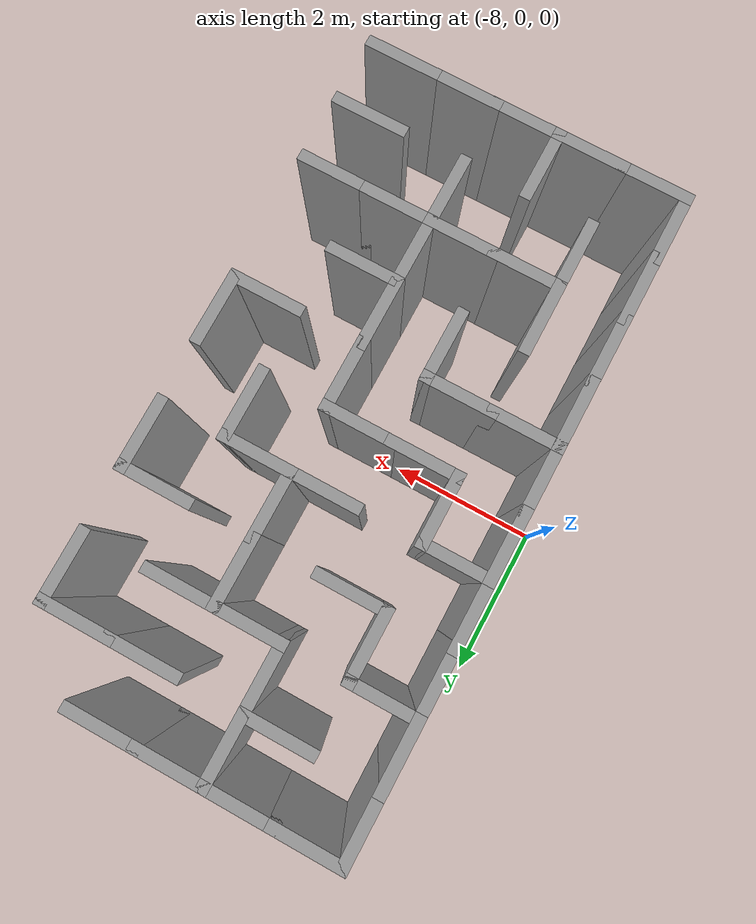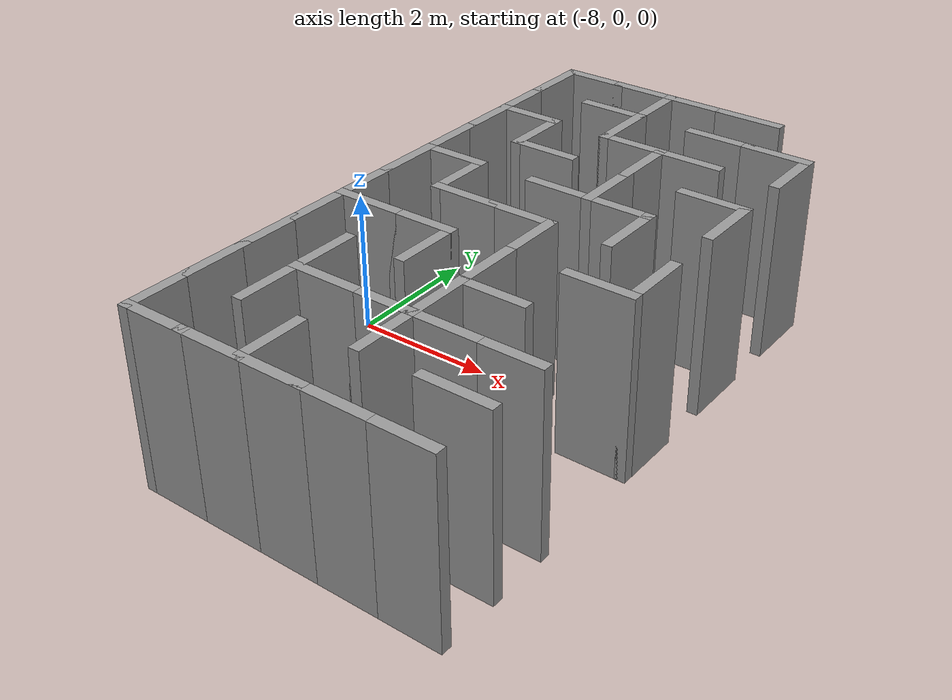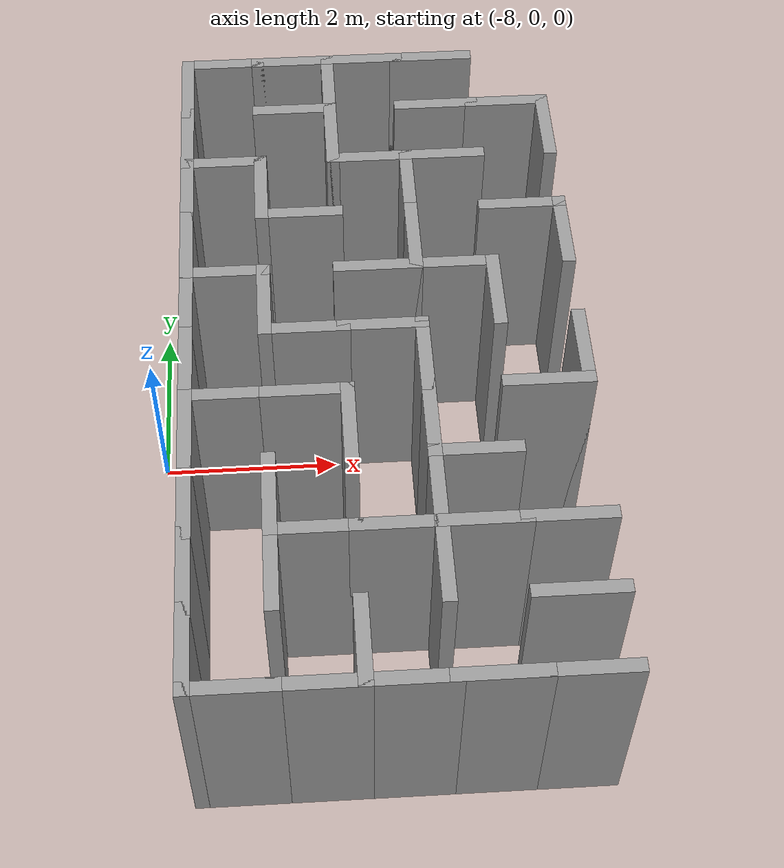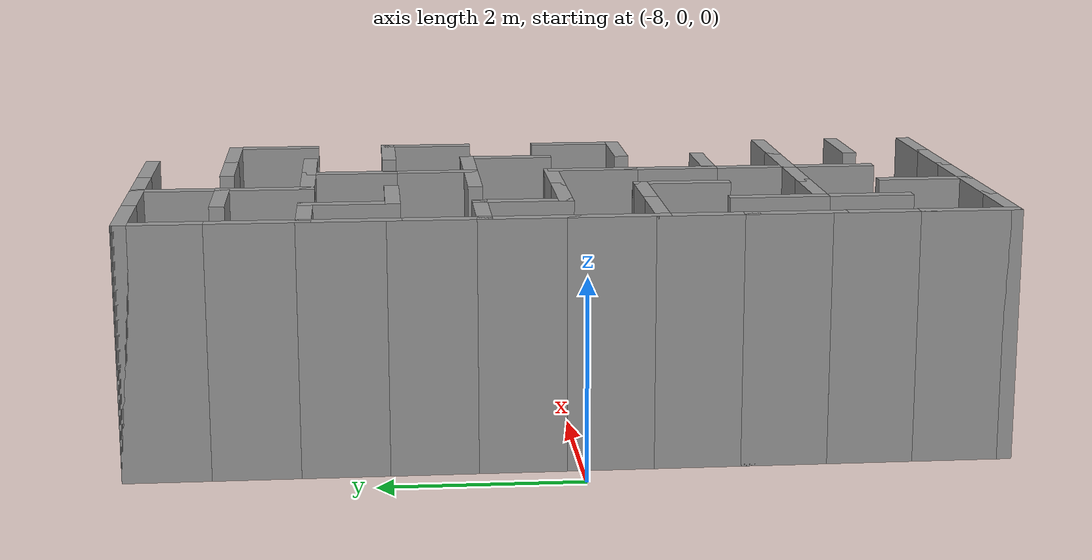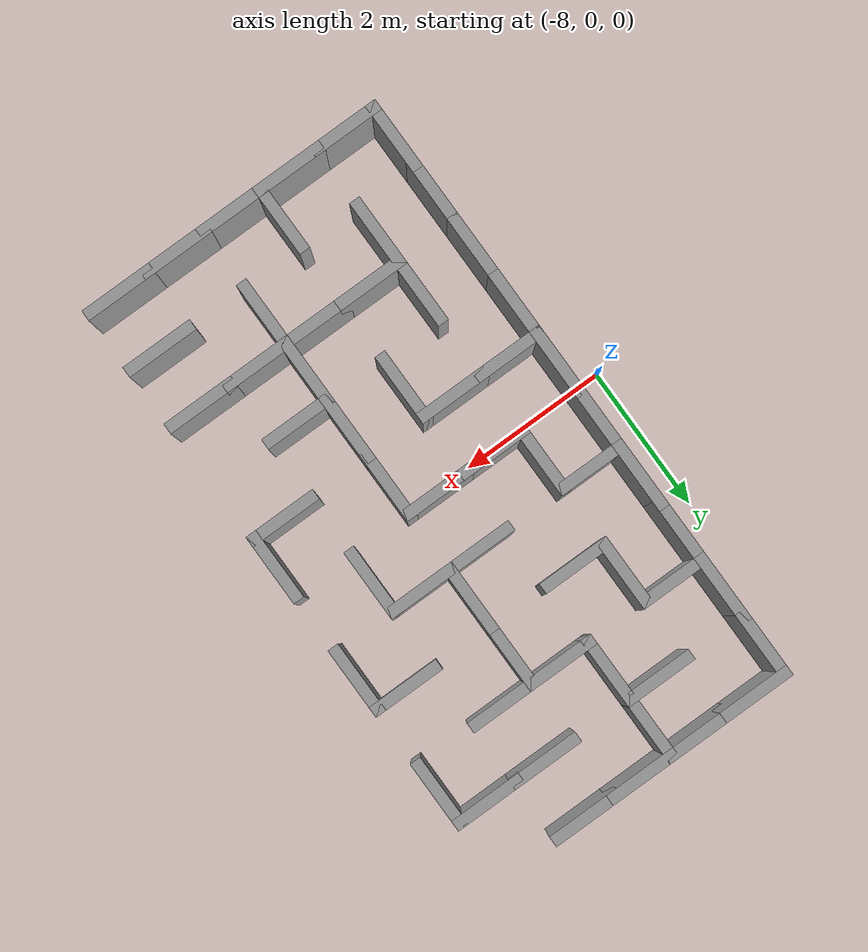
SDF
<sdf version="1.6">
 <model name="maze_2">
  <pose>-3.32543 0.082709 0 0 -0 0</pose>
  <link name="Wall_0">
   <collision name="Wall_0_Collision">
    <geometry><box><size>1 0.15 2.5</size></box></geometry>
    <pose>0 0 1.25 0 -0 0</pose>
   </collision>
   <visual name="Wall_0_Visual">
    <pose>0 0 1.25 0 -0 0</pose>
    <geometry><box><size>1 0.15 2.5</size></box></geometry>
    <material>
     <script><uri>file://media/materials/scripts/gazebo.material</uri><name>Gazebo/Grey</name></script>
     <ambient>1 1 1 1</ambient>
    </material>
    <meta><layer>0</layer></meta>
   </visual>
   <pose>-3.825 4.25 0 0 -0 0</pose>
  </link>
  <link name="Wall_1">
   <collision name="Wall_1_Collision">
    <geometry><box><size>1 0.15 2.5</size></box></geometry>
    <pose>0 0 1.25 0 -0 0</pose>
   </collision>
   <visual name="Wall_1_Visual">
    <pose>0 0 1.25 0 -0 0</pose>
    <geometry><box><size>1 0.15 2.5</size></box></geometry>
    <material>
     <script><uri>file://media/materials/scripts/gazebo.material</uri><name>Gazebo/Grey</name></script>
     <ambient>1 1 1 1</ambient>
    </material>
    <meta><layer>0</layer></meta>
   </visual>
   <pose>-2.975 4.25 0 0 -0 0</pose>
  </link>
  <link name="Wall_100">
   <collision name="Wall_100_Collision">
    <geometry><box><size>1 0.15 2.5</size></box></geometry>
    <pose>0 0 1.25 0 -0 0</pose>
   </collision>
   <visual name="Wall_100_Visual">
    <pose>0 0 1.25 0 -0 0</pose>
    <geometry><box><size>1 0.15 2.5</size></box></geometry>
    <material>
     <script><uri>file://media/materials/scripts/gazebo.material</uri><name>Gazebo/Grey</name></script>
     <ambient>1 1 1 1</ambient>
    </material>
    <meta><layer>0</layer></meta>
   </visual>
   <pose>-3.825 -0.85 0 0 -0 0</pose>
  </link>
  <link name="Wall_101">
   <collision name="Wall_101_Collision">
    <geometry><box><size>1 0.15 2.5</size></box></geometry>
    <pose>0 0 1.25 0 -0 0</pose>
   </collision>
   <visual name="Wall_101_Visual">
    <pose>0 0 1.25 0 -0 0</pose>
    <geometry><box><size>1 0.15 2.5</size></box></geometry>
    <material>
     <script><uri>file://media/materials/scripts/gazebo.material</uri><name>Gazebo/Grey</name></script>
     <ambient>1 1 1 1</ambient>
    </material>
    <meta><layer>0</layer></meta>
   </visual>
   <pose>-2.975 -0.85 0 0 -0 0</pose>
  </link>
  <link name="Wall_104">
   <collision name="Wall_104_Collision">
    <geometry><box><size>1 0.15 2.5</size></box></geometry>
    <pose>0 0 1.25 0 -0 0</pose>
   </collision>
   <visual name="Wall_104_Visual">
    <pose>0 0 1.25 0 -0 0</pose>
    <geometry><box><size>1 0.15 2.5</size></box></geometry>
    <material>
     <script><uri>file://media/materials/scripts/gazebo.material</uri><name>Gazebo/Grey</name></script>
     <ambient>1 1 1 1</ambient>
    </material>
    <meta><layer>0</layer></meta>
   </visual>
   <pose>-0.425 -0.85 0 0 -0 0</pose>
  </link>
  <link name="Wall_117">
   <collision name="Wall_117_Collision">
    <geometry><box><size>1 0.15 2.5</size></box></geometry>
    <pose>0 0 1.25 0 -0 0</pose>
   </collision>
   <visual name="Wall_117_Visual">
    <pose>0 0 1.25 0 -0 0</pose>
    <geometry><box><size>1 0.15 2.5</size></box></geometry>
    <material>
     <script><uri>file://media/materials/scripts/gazebo.material</uri><name>Gazebo/Grey</name></script>
     <ambient>1 1 1 1</ambient>
    </material>
    <meta><layer>0</layer></meta>
   </visual>
   <pose>-1.275 -1.7 0 0 -0 3.14159</pose>
  </link>
  <link name="Wall_124">
   <collision name="Wall_124_Collision">
    <geometry><box><size>1 0.15 2.5</size></box></geometry>
    <pose>0 0 1.25 0 -0 0</pose>
   </collision>
   <visual name="Wall_124_Visual">
    <pose>0 0 1.25 0 -0 0</pose>
    <geometry><box><size>1 0.15 2.5</size></box></geometry>
    <material>
     <script><uri>file://media/materials/scripts/gazebo.material</uri><name>Gazebo/Grey</name></script>
     <ambient>1 1 1 1</ambient>
    </material>
    <meta><layer>0</layer></meta>
   </visual>
   <pose>-2.975 -2.55 0 0 -0 0</pose>
  </link>
  <link name="Wall_125">
   <collision name="Wall_125_Collision">
    <geometry><box><size>1 0.15 2.5</size></box></geometry>
    <pose>0 0 1.25 0 -0 0</pose>
   </collision>
   <visual name="Wall_125_Visual">
    <pose>0 0 1.25 0 -0 0</pose>
    <geometry><box><size>1 0.15 2.5</size></box></geometry>
    <material>
     <script><uri>file://media/materials/scripts/gazebo.material</uri><name>Gazebo/Grey</name></script>
     <ambient>1 1 1 1</ambient>
    </material>
    <meta><layer>0</layer></meta>
   </visual>
   <pose>-2.125 -2.55 0 0 -0 0</pose>
  </link>
  <link name="Wall_126">
   <collision name="Wall_126_Collision">
    <geometry><box><size>1 0.15 2.5</size></box></geometry>
    <pose>0 0 1.25 0 -0 0</pose>
   </collision>
   <visual name="Wall_126_Visual">
    <pose>0 0 1.25 0 -0 0</pose>
    <geometry><box><size>1 0.15 2.5</size></box></geometry>
    <material>
     <script><uri>file://media/materials/scripts/gazebo.material</uri><name>Gazebo/Grey</name></script>
     <ambient>1 1 1 1</ambient>
    </material>
    <meta><layer>0</layer></meta>
   </visual>
   <pose>-1.275 -2.55 0 0 -0 0</pose>
  </link>
  <link name="Wall_127">
   <collision name="Wall_127_Collision">
    <geometry><box><size>1 0.15 2.5</size></box></geometry>
    <pose>0 0 1.25 0 -0 0</pose>
   </collision>
   <visual name="Wall_127_Visual">
    <pose>0 0 1.25 0 -0 0</pose>
    <geometry><box><size>1 0.15 2.5</size></box></geometry>
    <material>
     <script><uri>file://media/materials/scripts/gazebo.material</uri><name>Gazebo/Grey</name></script>
     <ambient>1 1 1 1</ambient>
    </material>
    <meta><layer>0</layer></meta>
   </visual>
   <pose>-0.425 -2.55 0 0 -0 0</pose>
  </link>
  <link name="Wall_138">
   <collision name="Wall_138_Collision">
    <geometry><box><size>1 0.15 2.5</size></box></geometry>
    <pose>0 0 1.25 0 -0 0</pose>
   </collision>
   <visual name="Wall_138_Visual">
    <pose>0 0 1.25 0 -0 0</pose>
    <geometry><box><size>1 0.15 2.5</size></box></geometry>
    <material>
     <script><uri>file://media/materials/scripts/gazebo.material</uri><name>Gazebo/Grey</name></script>
     <ambient>1 1 1 1</ambient>
    </material>
    <meta><layer>0</layer></meta>
   </visual>
   <pose>-0.425 -3.4 0 0 -0 0</pose>
  </link>
  <link name="Wall_147">
   <collision name="Wall_147_Collision">
    <geometry><box><size>1 0.15 2.5</size></box></geometry>
    <pose>0 0 1.25 0 -0 0</pose>
   </collision>
   <visual name="Wall_147_Visual">
    <pose>0 0 1.25 0 -0 0</pose>
    <geometry><box><size>1 0.15 2.5</size></box></geometry>
    <material>
     <script><uri>file://media/materials/scripts/gazebo.material</uri><name>Gazebo/Grey</name></script>
     <ambient>1 1 1 1</ambient>
    </material>
    <meta><layer>0</layer></meta>
   </visual>
   <pose>-3.4 2.125 0 0 -0 -1.5708</pose>
  </link>
  <link name="Wall_149">
   <collision name="Wall_149_Collision">
    <geometry><box><size>1 0.15 2.5</size></box></geometry>
    <pose>0 0 1.25 0 -0 0</pose>
   </collision>
   <visual name="Wall_149_Visual">
    <pose>0 0 1.25 0 -0 0</pose>
    <geometry><box><size>1 0.15 2.5</size></box></geometry>
    <material>
     <script><uri>file://media/materials/scripts/gazebo.material</uri><name>Gazebo/Grey</name></script>
     <ambient>1 1 1 1</ambient>
    </material>
    <meta><layer>0</layer></meta>
   </visual>
   <pose>-3.4 0.425 0 0 -0 -1.5708</pose>
  </link>
  <link name="Wall_152">
   <collision name="Wall_152_Collision">
    <geometry><box><size>1 0.15 2.5</size></box></geometry>
    <pose>0 0 1.25 0 -0 0</pose>
   </collision>
   <visual name="Wall_152_Visual">
    <pose>0 0 1.25 0 -0 0</pose>
    <geometry><box><size>1 0.15 2.5</size></box></geometry>
    <material>
     <script><uri>file://media/materials/scripts/gazebo.material</uri><name>Gazebo/Grey</name></script>
     <ambient>1 1 1 1</ambient>
    </material>
    <meta><layer>0</layer></meta>
   </visual>
   <pose>-3.4 -2.125 0 0 -0 -1.5708</pose>
  </link>
  <link name="Wall_153">
   <collision name="Wall_153_Collision">
    <geometry><box><size>1 0.15 2.5</size></box></geometry>
    <pose>0 0 1.25 0 -0 0</pose>
   </collision>
   <visual name="Wall_153_Visual">
    <pose>0 0 1.25 0 -0 0</pose>
    <geometry><box><size>1 0.15 2.5</size></box></geometry>
    <material>
     <script><uri>file://media/materials/scripts/gazebo.material</uri><name>Gazebo/Grey</name></script>
     <ambient>1 1 1 1</ambient>
    </material>
    <meta><layer>0</layer></meta>
   </visual>
   <pose>-3.4 -2.975 0 0 -0 -1.5708</pose>
  </link>
  <link name="Wall_156">
   <collision name="Wall_156_Collision">
    <geometry><box><size>1 0.15 2.5</size></box></geometry>
    <pose>0 0 1.25 0 -0 0</pose>
   </collision>
   <visual name="Wall_156_Visual">
    <pose>0 0 1.25 0 -0 0</pose>
    <geometry><box><size>1 0.15 2.5</size></box></geometry>
    <material>
     <script><uri>file://media/materials/scripts/gazebo.material</uri><name>Gazebo/Grey</name></script>
     <ambient>1 1 1 1</ambient>
    </material>
    <meta><layer>0</layer></meta>
   </visual>
   <pose>-2.55 3.825 0 0 -0 -1.5708</pose>
  </link>
  <link name="Wall_157">
   <collision name="Wall_157_Collision">
    <geometry><box><size>1 0.15 2.5</size></box></geometry>
    <pose>0 0 1.25 0 -0 0</pose>
   </collision>
   <visual name="Wall_157_Visual">
    <pose>0 0 1.25 0 -0 0</pose>
    <geometry><box><size>1 0.15 2.5</size></box></geometry>
    <material>
     <script><uri>file://media/materials/scripts/gazebo.material</uri><name>Gazebo/Grey</name></script>
     <ambient>1 1 1 1</ambient>
    </material>
    <meta><layer>0</layer></meta>
   </visual>
   <pose>-2.55 2.975 0 0 -0 -1.5708</pose>
  </link>
  <link name="Wall_162">
   <collision name="Wall_162_Collision">
    <geometry><box><size>1 0.15 2.5</size></box></geometry>
    <pose>0 0 1.25 0 -0 0</pose>
   </collision>
   <visual name="Wall_162_Visual">
    <pose>0 0 1.25 0 -0 0</pose>
    <geometry><box><size>1 0.15 2.5</size></box></geometry>
    <material>
     <script><uri>file://media/materials/scripts/gazebo.material</uri><name>Gazebo/Grey</name></script>
     <ambient>1 1 1 1</ambient>
    </material>
    <meta><layer>0</layer></meta>
   </visual>
   <pose>-2.55 -1.275 0 0 -0 -1.5708</pose>
  </link>
  <link name="Wall_165">
   <collision name="Wall_165_Collision">
    <geometry><box><size>1 0.15 2.5</size></box></geometry>
    <pose>0 0 1.25 0 -0 0</pose>
   </collision>
   <visual name="Wall_165_Visual">
    <pose>0 0 1.25 0 -0 0</pose>
    <geometry><box><size>1 0.15 2.5</size></box></geometry>
    <material>
     <script><uri>file://media/materials/scripts/gazebo.material</uri><name>Gazebo/Grey</name></script>
     <ambient>1 1 1 1</ambient>
    </material>
    <meta><layer>0</layer></meta>
   </visual>
   <pose>-2.55 -3.825 0 0 -0 -1.5708</pose>
  </link>
  <link name="Wall_169">
   <collision name="Wall_169_Collision">
    <geometry><box><size>1 0.15 2.5</size></box></geometry>
    <pose>0 0 1.25 0 -0 0</pose>
   </collision>
   <visual name="Wall_169_Visual">
    <pose>0 0 1.25 0 -0 0</pose>
    <geometry><box><size>1 0.15 2.5</size></box></geometry>
    <material>
     <script><uri>file://media/materials/scripts/gazebo.material</uri><name>Gazebo/Grey</name></script>
     <ambient>1 1 1 1</ambient>
    </material>
    <meta><layer>0</layer></meta>
   </visual>
   <pose>-1.7 2.125 0 0 -0 -1.5708</pose>
  </link>
  <link name="Wall_170">
   <collision name="Wall_170_Collision">
    <geometry><box><size>1 0.15 2.5</size></box></geometry>
    <pose>0 0 1.25 0 -0 0</pose>
   </collision>
   <visual name="Wall_170_Visual">
    <pose>0 0 1.25 0 -0 0</pose>
    <geometry><box><size>1 0.15 2.5</size></box></geometry>
    <material>
     <script><uri>file://media/materials/scripts/gazebo.material</uri><name>Gazebo/Grey</name></script>
     <ambient>1 1 1 1</ambient>
    </material>
    <meta><layer>0</layer></meta>
   </visual>
   <pose>-1.7 1.275 0 0 -0 -1.5708</pose>
  </link>
  <link name="Wall_172">
   <collision name="Wall_172_Collision">
    <geometry><box><size>1 0.15 2.5</size></box></geometry>
    <pose>0 0 1.25 0 -0 0</pose>
   </collision>
   <visual name="Wall_172_Visual">
    <pose>0 0 1.25 0 -0 0</pose>
    <geometry><box><size>1 0.15 2.5</size></box></geometry>
    <material>
     <script><uri>file://media/materials/scripts/gazebo.material</uri><name>Gazebo/Grey</name></script>
     <ambient>1 1 1 1</ambient>
    </material>
    <meta><layer>0</layer></meta>
   </visual>
   <pose>-1.7 -0.425 0 0 -0 -1.5708</pose>
  </link>
  <link name="Wall_173">
   <collision name="Wall_173_Collision">
    <geometry><box><size>1 0.15 2.5</size></box></geometry>
    <pose>0 0 1.25 0 -0 0</pose>
   </collision>
   <visual name="Wall_173_Visual">
    <pose>0 0 1.25 0 -0 0</pose>
    <geometry><box><size>1 0.15 2.5</size></box></geometry>
    <material>
     <script><uri>file://media/materials/scripts/gazebo.material</uri><name>Gazebo/Grey</name></script>
     <ambient>1 1 1 1</ambient>
    </material>
    <meta><layer>0</layer></meta>
   </visual>
   <pose>-1.7 -1.275 0 0 -0 -1.5708</pose>
  </link>
  <link name="Wall_174">
   <collision name="Wall_174_Collision">
    <geometry><box><size>1 0.15 2.5</size></box></geometry>
    <pose>0 0 1.25 0 -0 0</pose>
   </collision>
   <visual name="Wall_174_Visual">
    <pose>0 0 1.25 0 -0 0</pose>
    <geometry><box><size>1 0.15 2.5</size></box></geometry>
    <material>
     <script><uri>file://media/materials/scripts/gazebo.material</uri><name>Gazebo/Grey</name></script>
     <ambient>1 1 1 1</ambient>
    </material>
    <meta><layer>0</layer></meta>
   </visual>
   <pose>-1.7 -2.125 0 0 -0 -1.5708</pose>
  </link>
  <link name="Wall_175">
   <collision name="Wall_175_Collision">
    <geometry><box><size>1 0.15 2.5</size></box></geometry>
    <pose>0 0 1.25 0 -0 0</pose>
   </collision>
   <visual name="Wall_175_Visual">
    <pose>0 0 1.25 0 -0 0</pose>
    <geometry><box><size>1 0.15 2.5</size></box></geometry>
    <material>
     <script><uri>file://media/materials/scripts/gazebo.material</uri><name>Gazebo/Grey</name></script>
     <ambient>1 1 1 1</ambient>
    </material>
    <meta><layer>0</layer></meta>
   </visual>
   <pose>-1.7 -2.975 0 0 -0 -1.5708</pose>
  </link>
  <link name="Wall_182">
   <collision name="Wall_182_Collision">
    <geometry><box><size>1 0.15 2.5</size></box></geometry>
    <pose>0 0 1.25 0 -0 0</pose>
   </collision>
   <visual name="Wall_182_Visual">
    <pose>0 0 1.25 0 -0 0</pose>
    <geometry><box><size>1 0.15 2.5</size></box></geometry>
    <material>
     <script><uri>file://media/materials/scripts/gazebo.material</uri><name>Gazebo/Grey</name></script>
     <ambient>1 1 1 1</ambient>
    </material>
    <meta><layer>0</layer></meta>
   </visual>
   <pose>-0.85 0.425 0 0 -0 -1.5708</pose>
  </link>
  <link name="Wall_190">
   <collision name="Wall_190_Collision">
    <geometry><box><size>1 0.15 2.5</size></box></geometry>
    <pose>0 0 1.25 0 -0 0</pose>
   </collision>
   <visual name="Wall_190_Visual">
    <pose>0 0 1.25 0 -0 0</pose>
    <geometry><box><size>1 0.15 2.5</size></box></geometry>
    <material>
     <script><uri>file://media/materials/scripts/gazebo.material</uri><name>Gazebo/Grey</name></script>
     <ambient>1 1 1 1</ambient>
    </material>
    <meta><layer>0</layer></meta>
   </visual>
   <pose>0 2.975 0 0 -0 -1.5708</pose>
  </link>
  <link name="Wall_192">
   <collision name="Wall_192_Collision">
    <geometry><box><size>1 0.15 2.5</size></box></geometry>
    <pose>0 0 1.25 0 -0 0</pose>
   </collision>
   <visual name="Wall_192_Visual">
    <pose>0 0 1.25 0 -0 0</pose>
    <geometry><box><size>1 0.15 2.5</size></box></geometry>
    <material>
     <script><uri>file://media/materials/scripts/gazebo.material</uri><name>Gazebo/Grey</name></script>
     <ambient>1 1 1 1</ambient>
    </material>
    <meta><layer>0</layer></meta>
   </visual>
   <pose>0 1.275 0 0 -0 -1.5708</pose>
  </link>
  <link name="Wall_194">
   <collision name="Wall_194_Collision">
    <geometry><box><size>1 0.15 2.5</size></box></geometry>
    <pose>0 0 1.25 0 -0 0</pose>
   </collision>
   <visual name="Wall_194_Visual">
    <pose>0 0 1.25 0 -0 0</pose>
    <geometry><box><size>1 0.15 2.5</size></box></geometry>
    <material>
     <script><uri>file://media/materials/scripts/gazebo.material</uri><name>Gazebo/Grey</name></script>
     <ambient>1 1 1 1</ambient>
    </material>
    <meta><layer>0</layer></meta>
   </visual>
   <pose>0 -0.425 0 0 -0 -1.5708</pose>
  </link>
  <link name="Wall_2">
   <collision name="Wall_2_Collision">
    <geometry><box><size>1 0.15 2.5</size></box></geometry>
    <pose>0 0 1.25 0 -0 0</pose>
   </collision>
   <visual name="Wall_2_Visual">
    <pose>0 0 1.25 0 -0 0</pose>
    <geometry><box><size>1 0.15 2.5</size></box></geometry>
    <material>
     <script><uri>file://media/materials/scripts/gazebo.material</uri><name>Gazebo/Grey</name></script>
     <ambient>1 1 1 1</ambient>
    </material>
    <meta><layer>0</layer></meta>
   </visual>
   <pose>-2.125 4.25 0 0 -0 0</pose>
  </link>
  <link name="Wall_27">
   <collision name="Wall_27_Collision">
    <geometry><box><size>1 0.15 2.5</size></box></geometry>
    <pose>0 0 1.25 0 -0 0</pose>
   </collision>
   <visual name="Wall_27_Visual">
    <pose>0 0 1.25 0 -0 0</pose>
    <geometry><box><size>1 0.15 2.5</size></box></geometry>
    <material>
     <script><uri>file://media/materials/scripts/gazebo.material</uri><name>Gazebo/Grey</name></script>
     <ambient>1 1 1 1</ambient>
    </material>
    <meta><layer>0</layer></meta>
   </visual>
   <pose>-0.425 -4.25 0 0 -0 3.14159</pose>
  </link>
  <link name="Wall_28">
   <collision name="Wall_28_Collision">
    <geometry><box><size>1 0.15 2.5</size></box></geometry>
    <pose>0 0 1.25 0 -0 0</pose>
   </collision>
   <visual name="Wall_28_Visual">
    <pose>0 0 1.25 0 -0 0</pose>
    <geometry><box><size>1 0.15 2.5</size></box></geometry>
    <material>
     <script><uri>file://media/materials/scripts/gazebo.material</uri><name>Gazebo/Grey</name></script>
     <ambient>1 1 1 1</ambient>
    </material>
    <meta><layer>0</layer></meta>
   </visual>
   <pose>-1.275 -4.25 0 0 -0 3.14159</pose>
  </link>
  <link name="Wall_29">
   <collision name="Wall_29_Collision">
    <geometry><box><size>1 0.15 2.5</size></box></geometry>
    <pose>0 0 1.25 0 -0 0</pose>
   </collision>
   <visual name="Wall_29_Visual">
    <pose>0 0 1.25 0 -0 0</pose>
    <geometry><box><size>1 0.15 2.5</size></box></geometry>
    <material>
     <script><uri>file://media/materials/scripts/gazebo.material</uri><name>Gazebo/Grey</name></script>
     <ambient>1 1 1 1</ambient>
    </material>
    <meta><layer>0</layer></meta>
   </visual>
   <pose>-2.125 -4.25 0 0 -0 3.14159</pose>
  </link>
  <link name="Wall_3">
   <collision name="Wall_3_Collision">
    <geometry><box><size>1 0.15 2.5</size></box></geometry>
    <pose>0 0 1.25 0 -0 0</pose>
   </collision>
   <visual name="Wall_3_Visual">
    <pose>0 0 1.25 0 -0 0</pose>
    <geometry><box><size>1 0.15 2.5</size></box></geometry>
    <material>
     <script><uri>file://media/materials/scripts/gazebo.material</uri><name>Gazebo/Grey</name></script>
     <ambient>1 1 1 1</ambient>
    </material>
    <meta><layer>0</layer></meta>
   </visual>
   <pose>-1.275 4.25 0 0 -0 0</pose>
  </link>
  <link name="Wall_30">
   <collision name="Wall_30_Collision">
    <geometry><box><size>1 0.15 2.5</size></box></geometry>
    <pose>0 0 1.25 0 -0 0</pose>
   </collision>
   <visual name="Wall_30_Visual">
    <pose>0 0 1.25 0 -0 0</pose>
    <geometry><box><size>1 0.15 2.5</size></box></geometry>
    <material>
     <script><uri>file://media/materials/scripts/gazebo.material</uri><name>Gazebo/Grey</name></script>
     <ambient>1 1 1 1</ambient>
    </material>
    <meta><layer>0</layer></meta>
   </visual>
   <pose>-2.975 -4.25 0 0 -0 3.14159</pose>
  </link>
  <link name="Wall_31">
   <collision name="Wall_31_Collision">
    <geometry><box><size>1 0.15 2.5</size></box></geometry>
    <pose>0 0 1.25 0 -0 0</pose>
   </collision>
   <visual name="Wall_31_Visual">
    <pose>0 0 1.25 0 -0 0</pose>
    <geometry><box><size>1 0.15 2.5</size></box></geometry>
    <material>
     <script><uri>file://media/materials/scripts/gazebo.material</uri><name>Gazebo/Grey</name></script>
     <ambient>1 1 1 1</ambient>
    </material>
    <meta><layer>0</layer></meta>
   </visual>
   <pose>-3.825 -4.25 0 0 -0 3.14159</pose>
  </link>
  <link name="Wall_32">
   <collision name="Wall_32_Collision">
    <geometry><box><size>1 0.15 2.5</size></box></geometry>
    <pose>0 0 1.25 0 -0 0</pose>
   </collision>
   <visual name="Wall_32_Visual">
    <pose>0 0 1.25 0 -0 0</pose>
    <geometry><box><size>1 0.15 2.5</size></box></geometry>
    <material>
     <script><uri>file://media/materials/scripts/gazebo.material</uri><name>Gazebo/Grey</name></script>
     <ambient>1 1 1 1</ambient>
    </material>
    <meta><layer>0</layer></meta>
   </visual>
   <pose>-4.25 -3.825 0 0 -0 1.5708</pose>
  </link>
  <link name="Wall_33">
   <collision name="Wall_33_Collision">
    <geometry><box><size>1 0.15 2.5</size></box></geometry>
    <pose>0 0 1.25 0 -0 0</pose>
   </collision>
   <visual name="Wall_33_Visual">
    <pose>0 0 1.25 0 -0 0</pose>
    <geometry><box><size>1 0.15 2.5</size></box></geometry>
    <material>
     <script><uri>file://media/materials/scripts/gazebo.material</uri><name>Gazebo/Grey</name></script>
     <ambient>1 1 1 1</ambient>
    </material>
    <meta><layer>0</layer></meta>
   </visual>
   <pose>-4.25 -2.975 0 0 -0 1.5708</pose>
  </link>
  <link name="Wall_34">
   <collision name="Wall_34_Collision">
    <geometry><box><size>1 0.15 2.5</size></box></geometry>
    <pose>0 0 1.25 0 -0 0</pose>
   </collision>
   <visual name="Wall_34_Visual">
    <pose>0 0 1.25 0 -0 0</pose>
    <geometry><box><size>1 0.15 2.5</size></box></geometry>
    <material>
     <script><uri>file://media/materials/scripts/gazebo.material</uri><name>Gazebo/Grey</name></script>
     <ambient>1 1 1 1</ambient>
    </material>
    <meta><layer>0</layer></meta>
   </visual>
   <pose>-4.25 -2.125 0 0 -0 1.5708</pose>
  </link>
  <link name="Wall_35">
   <collision name="Wall_35_Collision">
    <geometry><box><size>1 0.15 2.5</size></box></geometry>
    <pose>0 0 1.25 0 -0 0</pose>
   </collision>
   <visual name="Wall_35_Visual">
    <pose>0 0 1.25 0 -0 0</pose>
    <geometry><box><size>1 0.15 2.5</size></box></geometry>
    <material>
     <script><uri>file://media/materials/scripts/gazebo.material</uri><name>Gazebo/Grey</name></script>
     <ambient>1 1 1 1</ambient>
    </material>
    <meta><layer>0</layer></meta>
   </visual>
   <pose>-4.25 -1.275 0 0 -0 1.5708</pose>
  </link>
  <link name="Wall_36">
   <collision name="Wall_36_Collision">
    <geometry><box><size>1 0.15 2.5</size></box></geometry>
    <pose>0 0 1.25 0 -0 0</pose>
   </collision>
   <visual name="Wall_36_Visual">
    <pose>0 0 1.25 0 -0 0</pose>
    <geometry><box><size>1 0.15 2.5</size></box></geometry>
    <material>
     <script><uri>file://media/materials/scripts/gazebo.material</uri><name>Gazebo/Grey</name></script>
     <ambient>1 1 1 1</ambient>
    </material>
    <meta><layer>0</layer></meta>
   </visual>
   <pose>-4.25 -0.425 0 0 -0 1.5708</pose>
  </link>
  <link name="Wall_37">
   <collision name="Wall_37_Collision">
    <geometry><box><size>1 0.15 2.5</size></box></geometry>
    <pose>0 0 1.25 0 -0 0</pose>
   </collision>
   <visual name="Wall_37_Visual">
    <pose>0 0 1.25 0 -0 0</pose>
    <geometry><box><size>1 0.15 2.5</size></box></geometry>
    <material>
     <script><uri>file://media/materials/scripts/gazebo.material</uri><name>Gazebo/Grey</name></script>
     <ambient>1 1 1 1</ambient>
    </material>
    <meta><layer>0</layer></meta>
   </visual>
   <pose>-4.25 0.425 0 0 -0 1.5708</pose>
  </link>
  <link name="Wall_38">
   <collision name="Wall_38_Collision">
    <geometry><box><size>1 0.15 2.5</size></box></geometry>
    <pose>0 0 1.25 0 -0 0</pose>
   </collision>
   <visual name="Wall_38_Visual">
    <pose>0 0 1.25 0 -0 0</pose>
    <geometry><box><size>1 0.15 2.5</size></box></geometry>
    <material>
     <script><uri>file://media/materials/scripts/gazebo.material</uri><name>Gazebo/Grey</name></script>
     <ambient>1 1 1 1</ambient>
    </material>
    <meta><layer>0</layer></meta>
   </visual>
   <pose>-4.25 1.275 0 0 -0 1.5708</pose>
  </link>
  <link name="Wall_39">
   <collision name="Wall_39_Collision">
    <geometry><box><size>1 0.15 2.5</size></box></geometry>
    <pose>0 0 1.25 0 -0 0</pose>
   </collision>
   <visual name="Wall_39_Visual">
    <pose>0 0 1.25 0 -0 0</pose>
    <geometry><box><size>1 0.15 2.5</size></box></geometry>
    <material>
     <script><uri>file://media/materials/scripts/gazebo.material</uri><name>Gazebo/Grey</name></script>
     <ambient>1 1 1 1</ambient>
    </material>
    <meta><layer>0</layer></meta>
   </visual>
   <pose>-4.25 2.125 0 0 -0 1.5708</pose>
  </link>
  <link name="Wall_40">
   <collision name="Wall_40_Collision">
    <geometry><box><size>1 0.15 2.5</size></box></geometry>
    <pose>0 0 1.25 0 -0 0</pose>
   </collision>
   <visual name="Wall_40_Visual">
    <pose>0 0 1.25 0 -0 0</pose>
    <geometry><box><size>1 0.15 2.5</size></box></geometry>
    <material>
     <script><uri>file://media/materials/scripts/gazebo.material</uri><name>Gazebo/Grey</name></script>
     <ambient>1 1 1 1</ambient>
    </material>
    <meta><layer>0</layer></meta>
   </visual>
   <pose>-4.25 2.975 0 0 -0 1.5708</pose>
  </link>
  <link name="Wall_41">
   <collision name="Wall_41_Collision">
    <geometry><box><size>1 0.15 2.5</size></box></geometry>
    <pose>0 0 1.25 0 -0 0</pose>
   </collision>
   <visual name="Wall_41_Visual">
    <pose>0 0 1.25 0 -0 0</pose>
    <geometry><box><size>1 0.15 2.5</size></box></geometry>
    <material>
     <script><uri>file://media/materials/scripts/gazebo.material</uri><name>Gazebo/Grey</name></script>
     <ambient>1 1 1 1</ambient>
    </material>
    <meta><layer>0</layer></meta>
   </visual>
   <pose>-4.25 3.825 0 0 -0 1.5708</pose>
  </link>
  <link name="Wall_44">
   <collision name="Wall_44_Collision">
    <geometry><box><size>1 0.15 2.5</size></box></geometry>
    <pose>0 0 1.25 0 -0 0</pose>
   </collision>
   <visual name="Wall_44_Visual">
    <pose>0 0 1.25 0 -0 0</pose>
    <geometry><box><size>1 0.15 2.5</size></box></geometry>
    <material>
     <script><uri>file://media/materials/scripts/gazebo.material</uri><name>Gazebo/Grey</name></script>
     <ambient>1 1 1 1</ambient>
    </material>
    <meta><layer>0</layer></meta>
   </visual>
   <pose>-2.975 3.4 0 0 -0 0</pose>
  </link>
  <link name="Wall_46">
   <collision name="Wall_46_Collision">
    <geometry><box><size>1 0.15 2.5</size></box></geometry>
    <pose>0 0 1.25 0 -0 0</pose>
   </collision>
   <visual name="Wall_46_Visual">
    <pose>0 0 1.25 0 -0 0</pose>
    <geometry><box><size>1 0.15 2.5</size></box></geometry>
    <material>
     <script><uri>file://media/materials/scripts/gazebo.material</uri><name>Gazebo/Grey</name></script>
     <ambient>1 1 1 1</ambient>
    </material>
    <meta><layer>0</layer></meta>
   </visual>
   <pose>-1.275 3.4 0 0 -0 0</pose>
  </link>
  <link name="Wall_47">
   <collision name="Wall_47_Collision">
    <geometry><box><size>1 0.15 2.5</size></box></geometry>
    <pose>0 0 1.25 0 -0 0</pose>
   </collision>
   <visual name="Wall_47_Visual">
    <pose>0 0 1.25 0 -0 0</pose>
    <geometry><box><size>1 0.15 2.5</size></box></geometry>
    <material>
     <script><uri>file://media/materials/scripts/gazebo.material</uri><name>Gazebo/Grey</name></script>
     <ambient>1 1 1 1</ambient>
    </material>
    <meta><layer>0</layer></meta>
   </visual>
   <pose>-0.425 3.4 0 0 -0 0</pose>
  </link>
  <link name="Wall_56">
   <collision name="Wall_56_Collision">
    <geometry><box><size>1 0.15 2.5</size></box></geometry>
    <pose>0 0 1.25 0 -0 0</pose>
   </collision>
   <visual name="Wall_56_Visual">
    <pose>0 0 1.25 0 -0 0</pose>
    <geometry><box><size>1 0.15 2.5</size></box></geometry>
    <material>
     <script><uri>file://media/materials/scripts/gazebo.material</uri><name>Gazebo/Grey</name></script>
     <ambient>1 1 1 1</ambient>
    </material>
    <meta><layer>0</layer></meta>
   </visual>
   <pose>-3.825 2.55 0 0 -0 0</pose>
  </link>
  <link name="Wall_58">
   <collision name="Wall_58_Collision">
    <geometry><box><size>1 0.15 2.5</size></box></geometry>
    <pose>0 0 1.25 0 -0 0</pose>
   </collision>
   <visual name="Wall_58_Visual">
    <pose>0 0 1.25 0 -0 0</pose>
    <geometry><box><size>1 0.15 2.5</size></box></geometry>
    <material>
     <script><uri>file://media/materials/scripts/gazebo.material</uri><name>Gazebo/Grey</name></script>
     <ambient>1 1 1 1</ambient>
    </material>
    <meta><layer>0</layer></meta>
   </visual>
   <pose>-2.125 2.55 0 0 -0 0</pose>
  </link>
  <link name="Wall_59">
   <collision name="Wall_59_Collision">
    <geometry><box><size>1 0.15 2.5</size></box></geometry>
    <pose>0 0 1.25 0 -0 0</pose>
   </collision>
   <visual name="Wall_59_Visual">
    <pose>0 0 1.25 0 -0 0</pose>
    <geometry><box><size>1 0.15 2.5</size></box></geometry>
    <material>
     <script><uri>file://media/materials/scripts/gazebo.material</uri><name>Gazebo/Grey</name></script>
     <ambient>1 1 1 1</ambient>
    </material>
    <meta><layer>0</layer></meta>
   </visual>
   <pose>-1.275 2.55 0 0 -0 0</pose>
  </link>
  <link name="Wall_72">
   <collision name="Wall_72_Collision">
    <geometry><box><size>1 0.15 2.5</size></box></geometry>
    <pose>0 0 1.25 0 -0 0</pose>
   </collision>
   <visual name="Wall_72_Visual">
    <pose>0 0 1.25 0 -0 0</pose>
    <geometry><box><size>1 0.15 2.5</size></box></geometry>
    <material>
     <script><uri>file://media/materials/scripts/gazebo.material</uri><name>Gazebo/Grey</name></script>
     <ambient>1 1 1 1</ambient>
    </material>
    <meta><layer>0</layer></meta>
   </visual>
   <pose>-0.425 1.7 0 0 -0 3.14159</pose>
  </link>
  <link name="Wall_75">
   <collision name="Wall_75_Collision">
    <geometry><box><size>1 0.15 2.5</size></box></geometry>
    <pose>0 0 1.25 0 -0 0</pose>
   </collision>
   <visual name="Wall_75_Visual">
    <pose>0 0 1.25 0 -0 0</pose>
    <geometry><box><size>1 0.15 2.5</size></box></geometry>
    <material>
     <script><uri>file://media/materials/scripts/gazebo.material</uri><name>Gazebo/Grey</name></script>
     <ambient>1 1 1 1</ambient>
    </material>
    <meta><layer>0</layer></meta>
   </visual>
   <pose>-2.975 1.7 0 0 -0 3.14159</pose>
  </link>
  <link name="Wall_78">
   <collision name="Wall_78_Collision">
    <geometry><box><size>1 0.15 2.5</size></box></geometry>
    <pose>0 0 1.25 0 -0 0</pose>
   </collision>
   <visual name="Wall_78_Visual">
    <pose>0 0 1.25 0 -0 0</pose>
    <geometry><box><size>1 0.15 2.5</size></box></geometry>
    <material>
     <script><uri>file://media/materials/scripts/gazebo.material</uri><name>Gazebo/Grey</name></script>
     <ambient>1 1 1 1</ambient>
    </material>
    <meta><layer>0</layer></meta>
   </visual>
   <pose>-3.825 0.85 0 0 -0 0</pose>
  </link>
  <link name="Wall_80">
   <collision name="Wall_80_Collision">
    <geometry><box><size>1 0.15 2.5</size></box></geometry>
    <pose>0 0 1.25 0 -0 0</pose>
   </collision>
   <visual name="Wall_80_Visual">
    <pose>0 0 1.25 0 -0 0</pose>
    <geometry><box><size>1 0.15 2.5</size></box></geometry>
    <material>
     <script><uri>file://media/materials/scripts/gazebo.material</uri><name>Gazebo/Grey</name></script>
     <ambient>1 1 1 1</ambient>
    </material>
    <meta><layer>0</layer></meta>
   </visual>
   <pose>-2.125 0.85 0 0 -0 0</pose>
  </link>
  <link name="Wall_81">
   <collision name="Wall_81_Collision">
    <geometry><box><size>1 0.15 2.5</size></box></geometry>
    <pose>0 0 1.25 0 -0 0</pose>
   </collision>
   <visual name="Wall_81_Visual">
    <pose>0 0 1.25 0 -0 0</pose>
    <geometry><box><size>1 0.15 2.5</size></box></geometry>
    <material>
     <script><uri>file://media/materials/scripts/gazebo.material</uri><name>Gazebo/Grey</name></script>
     <ambient>1 1 1 1</ambient>
    </material>
    <meta><layer>0</layer></meta>
   </visual>
   <pose>-1.275 0.85 0 0 -0 0</pose>
  </link>
  <link name="Wall_96">
   <collision name="Wall_96_Collision">
    <geometry><box><size>1 0.15 2.5</size></box></geometry>
    <pose>0 0 1.25 0 -0 0</pose>
   </collision>
   <visual name="Wall_96_Visual">
    <pose>0 0 1.25 0 -0 0</pose>
    <geometry><box><size>1 0.15 2.5</size></box></geometry>
    <material>
     <script><uri>file://media/materials/scripts/gazebo.material</uri><name>Gazebo/Grey</name></script>
     <ambient>1 1 1 1</ambient>
    </material>
    <meta><layer>0</layer></meta>
   </visual>
   <pose>-2.125 0 0 0 -0 3.14159</pose>
  </link>
  <link name="Wall_97">
   <collision name="Wall_97_Collision">
    <geometry><box><size>1 0.15 2.5</size></box></geometry>
    <pose>0 0 1.25 0 -0 0</pose>
   </collision>
   <visual name="Wall_97_Visual">
    <pose>0 0 1.25 0 -0 0</pose>
    <geometry><box><size>1 0.15 2.5</size></box></geometry>
    <material>
     <script><uri>file://media/materials/scripts/gazebo.material</uri><name>Gazebo/Grey</name></script>
     <ambient>1 1 1 1</ambient>
    </material>
    <meta><layer>0</layer></meta>
   </visual>
   <pose>-2.975 0 0 0 -0 3.14159</pose>
  </link>
  <static>1</static>
 </model>
</sdf>
